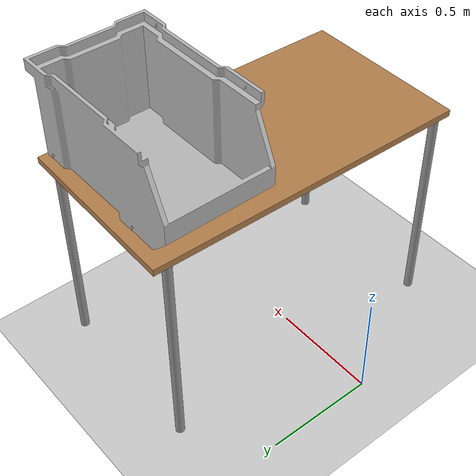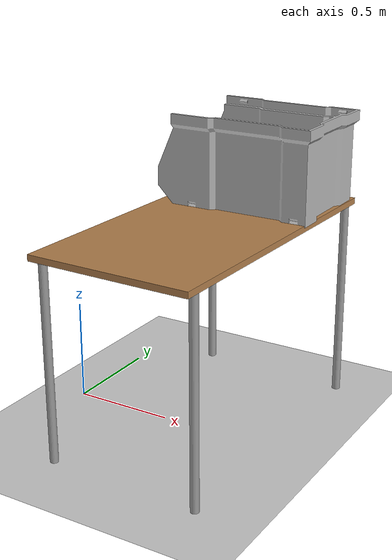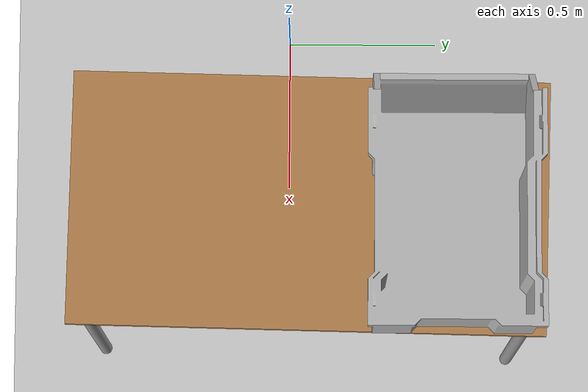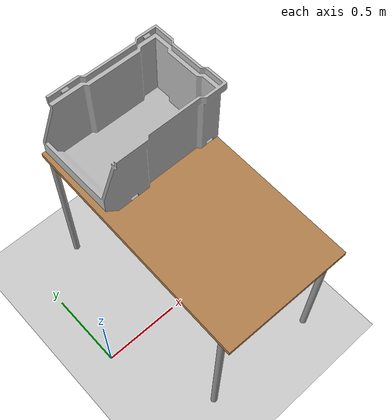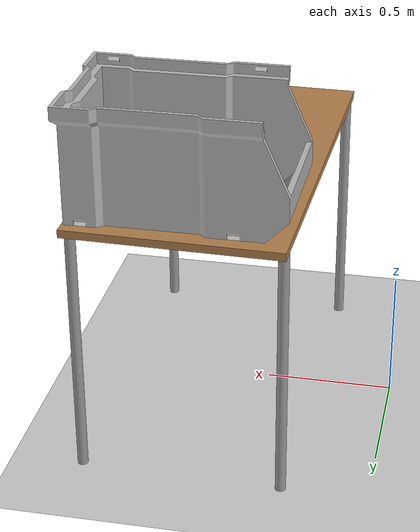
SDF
<sdf version="1.7">
 <world name="default">
  <plugin name="gazebo_ros_paths" filename="libgazebo_ros_paths_plugin.so"/>
  <light name="sun" type="directional">
   <pose>0 0 10 0 -0 0</pose>
   <diffuse>0.8 0.8 0.8 1</diffuse>
   <specular>0.2 0.2 0.2 1</specular>
   <direction>-0.5 0.1 -0.9</direction>
   <attenuation><range>10</range></attenuation>
   <spot><inner_angle>0</inner_angle><outer_angle>0</outer_angle><falloff>0</falloff></spot>
  </light>
  <gravity>0 0 -9.8</gravity>
  <physics type="ode">
   <max_step_size>0.001</max_step_size>
   <real_time_factor>1</real_time_factor>
   <real_time_update_rate>1000</real_time_update_rate>
  </physics>
  <model name="ground_plane">
   <static>1</static>
   <link name="link">
    <collision name="collision">
     <geometry><plane><normal>0 0 1</normal><size>100 100</size></plane></geometry>
     <surface><friction><ode><mu>100</mu><mu2>50</mu2></ode></friction></surface>
    </collision>
    <visual name="visual">
     <cast_shadows>0</cast_shadows>
     <geometry><plane><normal>0 0 1</normal><size>100 100</size></plane></geometry>
     <material>
      <script><uri>file://media/materials/scripts/gazebo.material</uri><name>Gazebo/Grey</name></script>
     </material>
    </visual>
   </link>
  </model>
  <model name="table">
   <static>1</static>
   <link name="link">
    <collision name="surface_collision">
     <pose>0 0 1 0 -0 0</pose>
     <geometry><box><size>1.5 0.8 0.03</size></box></geometry>
    </collision>
    <visual name="surface_visual">
     <pose>0 0 1 0 -0 0</pose>
     <geometry><box><size>1.5 0.8 0.03</size></box></geometry>
     <material>
      <script><uri>file://media/materials/scripts/gazebo.material</uri><name>Gazebo/Wood</name></script>
     </material>
    </visual>
    <collision name="front_left_leg_collision">
     <pose>0.68 0.38 0.5 0 -0 0</pose>
     <geometry><cylinder><radius>0.02</radius><length>1</length></cylinder></geometry>
    </collision>
    <visual name="front_left_leg_visual">
     <pose>0.68 0.38 0.5 0 -0 0</pose>
     <geometry><cylinder><radius>0.02</radius><length>1</length></cylinder></geometry>
     <material>
      <script><uri>file://media/materials/scripts/gazebo.material</uri><name>Gazebo/Grey</name></script>
     </material>
    </visual>
    <collision name="front_right_leg_collision">
     <pose>0.68 -0.38 0.5 0 -0 0</pose>
     <geometry><cylinder><radius>0.02</radius><length>1</length></cylinder></geometry>
    </collision>
    <visual name="front_right_leg_visual">
     <pose>0.68 -0.38 0.5 0 -0 0</pose>
     <geometry><cylinder><radius>0.02</radius><length>1</length></cylinder></geometry>
     <material>
      <script><uri>file://media/materials/scripts/gazebo.material</uri><name>Gazebo/Grey</name></script>
     </material>
    </visual>
    <collision name="back_right_leg_collision">
     <pose>-0.68 -0.38 0.5 0 -0 0</pose>
     <geometry><cylinder><radius>0.02</radius><length>1</length></cylinder></geometry>
    </collision>
    <visual name="back_right_leg_visual">
     <pose>-0.68 -0.38 0.5 0 -0 0</pose>
     <geometry><cylinder><radius>0.02</radius><length>1</length></cylinder></geometry>
     <material>
      <script><uri>file://media/materials/scripts/gazebo.material</uri><name>Gazebo/Grey</name></script>
     </material>
    </visual>
    <collision name="back_left_leg_collision">
     <pose>-0.68 0.38 0.5 0 -0 0</pose>
     <geometry><cylinder><radius>0.02</radius><length>1</length></cylinder></geometry>
    </collision>
    <visual name="back_left_leg_visual">
     <pose>-0.68 0.38 0.5 0 -0 0</pose>
     <geometry><cylinder><radius>0.02</radius><length>1</length></cylinder></geometry>
     <material>
      <script><uri>file://media/materials/scripts/gazebo.material</uri><name>Gazebo/Grey</name></script>
     </material>
    </visual>
   </link>
   <pose>0.687774 0.067424 0 0 -0 1.5491</pose>
  </model>
  <model name="mini_stacking_box">
   <frame name="mini_stacking_box::__model__" attached_to="mini_stacking_box::link">
    <pose relative_to="__model__">0 0 0 0 -0 0</pose>
   </frame>
   <static>0</static>
   <link name="mini_stacking_box::link">
    <inertial>
     <mass>1</mass>
     <inertia>
      <ixx>0.07155</ixx>
      <iyy>0.041175</iyy>
      <izz>0.078975</izz>
      <ixy>0</ixy>
      <ixz>0</ixz>
      <iyz>0</iyz>
     </inertia>
    </inertial>
    <visual name="visual">
     <geometry>
      <mesh><uri>model://mini_stacking_box/meshes/mini_stacking_box.dae</uri><scale>1 1 1</scale></mesh>
     </geometry>
     <cast_shadows>0</cast_shadows>
    </visual>
    <collision name="col_bottom">
     <pose>0 0 -0.27 0 -0 0</pose>
     <geometry><box><size>0.5 0.77 0.01</size></box></geometry>
    </collision>
    <pose relative_to="mini_stacking_box::__model__">0 0 0 0 -0 0</pose>
   </link>
   <pose>0.795763 0.515349 1.29 0 -0 1.57126</pose>
  </model>
  <plugin name="gazebo_link_attacher" filename="libgazebo_link_attacher.so"/>
  <magnetic_field>6e-06 2.3e-05 -4.2e-05</magnetic_field>
  <atmosphere type="adiabatic"/>
  <scene><ambient>0.4 0.4 0.4 1</ambient><background>0.7 0.7 0.7 1</background><shadows>1</shadows></scene>
  <audio><device>default</device></audio>
  <spherical_coordinates>
   <surface_model>EARTH_WGS84</surface_model>
   <latitude_deg>0</latitude_deg>
   <longitude_deg>0</longitude_deg>
   <elevation>0</elevation>
   <heading_deg>0</heading_deg>
  </spherical_coordinates>
 </world>
</sdf>
